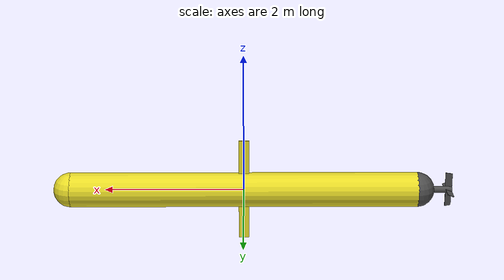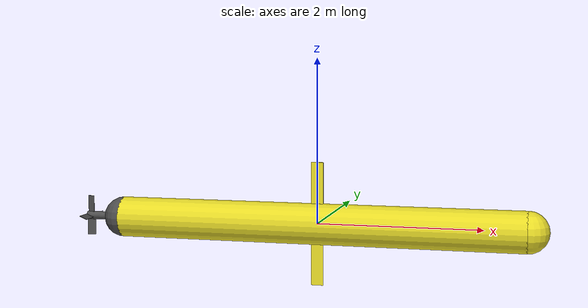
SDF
<?xml version="1.0" encoding="utf-8"?>
<sdf version='1.6'>
  <model name='torpedo'>
    <link name='base_link'>
      <pose frame=''>0 0 0 0 -0 0</pose>
      <inertial>
        <mass>4400</mass>
        <inertia>
          <ixx>0.145833</ixx>
          <ixy>0</ixy>
          <ixz>0</ixz>
          <iyy>0.145833</iyy>
          <iyz>0</iyz>
          <izz>0.125</izz>
        </inertia>
        <pose>0 0 0 0 -0 0</pose>
      </inertial>
      <visual name="base_link_body_visual">
        <pose frame=''>0 0 0 0 1.57079632679 0</pose>
        <geometry>
          <cylinder>
            <length>5</length>
            <radius>0.25</radius>
          </cylinder>
        </geometry>
        <material>
          <script>
            <name>Gazebo/DarkYellow</name>
            <uri>file://media/materials/scripts/gazebo.material</uri>
          </script>
        </material>
      </visual>
      <visual name="base_link_head_visual">
        <pose frame=''>2.5 0 0 0 0 0</pose>
        <geometry>
          <sphere>
            <radius>0.25</radius>
          </sphere>
        </geometry>
        <material>
          <script>
            <name>Gazebo/DarkYellow</name>
            <uri>file://media/materials/scripts/gazebo.material</uri>
          </script>
        </material>
      </visual>
      <visual name="base_link_tail_visual">
        <pose frame=''>-2.5 0 0 0 0 0</pose>
        <geometry>
          <sphere>
            <radius>0.25</radius>
          </sphere>
        </geometry>
        <material>
          <script>
            <name>Gazebo/DarkGray</name>
            <uri>file://media/materials/scripts/gazebo.material</uri>
          </script>
        </material>
      </visual>
      <collision name="base_link_body_collision">
        <pose frame=''>0 0 0 0 1.57079632679 0</pose>
        <geometry>
          <cylinder>
            <length>5</length>
            <radius>0.25</radius>
          </cylinder>
        </geometry>
      </collision>
      <collision name="base_link_head_collision">
        <pose frame=''>2.5 0 0 0 0 0</pose>
        <geometry>
          <sphere>
            <radius>0.25</radius>
          </sphere>
        </geometry>
      </collision>
      <collision name="base_link_tail_collision">
        <pose frame=''>-2.5 0 0 0 0 0</pose>
        <geometry>
          <sphere>
            <radius>0.25</radius>
          </sphere>
        </geometry>
      </collision>
    </link>
    <link name='propeller_link'>
      <pose frame=''>-2.954 0 0 0 0 0</pose>
      <inertial>
        <mass>10</mass>
        <pose>0 0 0 0 -0 0</pose>
      </inertial>
      <visual name='propeller_link_visual'>
        <pose frame=''>0.203947 0 0 0 -1.57079632679 0</pose>
        <geometry>
          <cylinder>
            <length>0.5</length>
            <radius>0.05</radius>
          </cylinder>
        </geometry>
        <material>
          <script>
            <name>Gazebo/DarkGray</name>
            <uri>file://media/materials/scripts/gazebo.material</uri>
          </script>
        </material>
      </visual>
      <visual name='propeller_link_blade_1_visual'>
        <pose frame=''>0 -0.125 0 0 -1.1708 0</pose>
        <geometry>
          <box>
            <size>0.005 0.25 0.1</size>
          </box>
        </geometry>
        <material>
          <script>
            <name>Gazebo/DarkGray</name>
            <uri>file://media/materials/scripts/gazebo.material</uri>
          </script>
        </material>
      </visual>
      <visual name='propeller_link_blade_2_visual'>
        <pose frame=''>0 0 0.125 0 0 -0.4</pose>
        <geometry>
          <box>
            <size>0.1 0.005 0.25</size>
          </box>
        </geometry>
        <material>
          <script>
            <name>Gazebo/DarkGray</name>
            <uri>file://media/materials/scripts/gazebo.material</uri>
          </script>
        </material>
      </visual>
      <visual name='propeller_link_blade_3_visual'>
        <pose frame=''>0 0.125 0 0 1.1708 0</pose>
        <geometry>
          <box>
            <size>0.005 0.25 0.1</size>
          </box>
        </geometry>
        <material>
          <script>
            <name>Gazebo/DarkGray</name>
            <uri>file://media/materials/scripts/gazebo.material</uri>
          </script>
        </material>
      </visual>
      <visual name='propeller_link_blade_4_visual'>
        <pose frame=''>0 0 -0.125 0 0 0.4</pose>
        <geometry>
          <box>
            <size>0.1 0.005 0.25</size>
          </box>
        </geometry>
        <material>
          <script>
            <name>Gazebo/DarkGray</name>
            <uri>file://media/materials/scripts/gazebo.material</uri>
          </script>
        </material>
      </visual>
      <collision name='propeller_link_collision'>
        <pose frame=''>0.203947 0 0 0 -1.57079632679 0</pose>
        <geometry>
          <cylinder>
            <length>0.5</length>
            <radius>0.05</radius>
          </cylinder>
        </geometry>
      </collision>
      <collision name='propeller_link_blade_1_collision'>
        <pose frame=''>0 -0.125 0 0 -1.1708 0</pose>
        <geometry>
          <box>
            <size>0.005 0.25 0.1</size>
          </box>
        </geometry>
      </collision>
      <collision name='propeller_link_blade_2_collision'>
        <pose frame=''>0 0 0.125 0 0 -0.4</pose>
        <geometry>
          <box>
            <size>0.1 0.005 0.25</size>
          </box>
        </geometry>
      </collision>
      <collision name='propeller_link_blade_3_collision'>
        <pose frame=''>0 0.125 0 0 1.1708 0</pose>
        <geometry>
          <box>
            <size>0.005 0.25 0.1</size>
          </box>
        </geometry>
      </collision>
      <collision name='propeller_link_blade_4_collision'>
        <pose frame=''>0 0 -0.125 0 0 0.4</pose>
        <geometry>
          <box>
            <size>0.1 0.005 0.25</size>
          </box>
        </geometry>
      </collision>
    </link>
    <joint name='propeller_joint' type='revolute'>
      <parent>base_link</parent>
      <child>propeller_link</child>
      <axis>
        <xyz>1 0 0</xyz>
      </axis>
    </joint>
    <link name='rudder_link'>
      <pose frame=''>0 0 0 0 0 0</pose>
      <inertial>
        <mass>1</mass>
        <pose>0 0 0 0 -0 0</pose>
      </inertial>
      <visual name='rudder_link_visual'>
        <pose frame=''>0 0 0 0 -0 0</pose>
        <geometry>
          <box>
            <size>0.15 0.02 1.5</size>
          </box>
        </geometry>
        <material>
          <script>
            <name>Gazebo/DarkYellow</name>
            <uri>file://media/materials/scripts/gazebo.material</uri>
          </script>
        </material>
      </visual>
      <collision name='rudder_link_collision'>
        <pose frame=''>0 0 0 0 -0 0</pose>
        <geometry>
          <box>
            <size>0.15 0.02 1.5</size>
          </box>
        </geometry>
      </collision>
    </link>
    <joint name='rudder_joint' type='revolute'>
      <parent>base_link</parent>
      <child>rudder_link</child>
      <axis>
        <xyz>0 0 1</xyz>
      </axis>
    </joint>

    <plugin name="propeller_liftdrag_blade_1" filename="libLiftDragPlugin.so">
      <air_density>1000</air_density><cla>1.2535816618911175</cla><cla_stall>-1.4326647564469914</cla_stall><cda>0</cda><cda_stall>1.4326647564469914</cda_stall><alpha_stall>1.396</alpha_stall>
      <a0>0.4</a0>
      <area>0.025</area>
      <forward>0 0 -1</forward>
      <upward>1 0 0</upward>
      <link_name>propeller_link</link_name>
      <cp>0 -0.125 0</cp>
    </plugin>

    <plugin name="propeller_liftdrag_blade_2" filename="libLiftDragPlugin.so">
      <air_density>1000</air_density><cla>1.2535816618911175</cla><cla_stall>-1.4326647564469914</cla_stall><cda>0</cda><cda_stall>1.4326647564469914</cda_stall><alpha_stall>1.396</alpha_stall>
      <a0>0.4</a0>
      <area>0.025</area>
      <forward>0 -1 0</forward>
      <upward>1 0 0</upward>
      <link_name>propeller_link</link_name>
      <cp>0 0 0.125</cp>
    </plugin>

    <plugin name="propeller_liftdrag_blade_3" filename="libLiftDragPlugin.so">
      <air_density>1000</air_density><cla>1.2535816618911175</cla><cla_stall>-1.4326647564469914</cla_stall><cda>0</cda><cda_stall>1.4326647564469914</cda_stall><alpha_stall>1.396</alpha_stall>
      <a0>0.4</a0>
      <area>0.025</area>
      <forward>0 0 1</forward>
      <upward>1 0 0</upward>
      <link_name>propeller_link</link_name>
      <cp>0 0.125 0</cp>
    </plugin>

    <plugin name="propeller_liftdrag_blade_4" filename="libLiftDragPlugin.so">
      <air_density>1000</air_density><cla>1.2535816618911175</cla><cla_stall>-1.4326647564469914</cla_stall><cda>0</cda><cda_stall>1.4326647564469914</cda_stall><alpha_stall>1.396</alpha_stall>
      <a0>0.4</a0>
      <area>0.025</area>
      <forward>0 1 0</forward>
      <upward>1 0 0</upward>
      <link_name>propeller_link</link_name>
      <cp>0 0 -0.125</cp>
    </plugin>

    <plugin name="rudder_liftdrag" filename="libLiftDragPlugin.so">
      <air_density>1000</air_density><cla>1.2535816618911175</cla><cla_stall>-1.4326647564469914</cla_stall><cda>0</cda><cda_stall>1.4326647564469914</cda_stall><alpha_stall>1.396</alpha_stall>
      <a0>0</a0>
      <area>0.225</area>
      <forward>1 0 0</forward>
      <upward>0 1 0</upward>
      <link_name>rudder_link</link_name>
      <cp>0 0 0</cp>
    </plugin>

    <plugin name='torpedo_plugin' filename='libtorpedo.so'>
      <namespace>torpedo</namespace>
      <propeller_joint>propeller_joint</propeller_joint>
      <propeller_topic>/propeller/velocity</propeller_topic>
      <rudder_link>rudder_link</rudder_link>
      <rudder_topic>/rudder/angle</rudder_topic>
    </plugin>

  </model>
</sdf>
